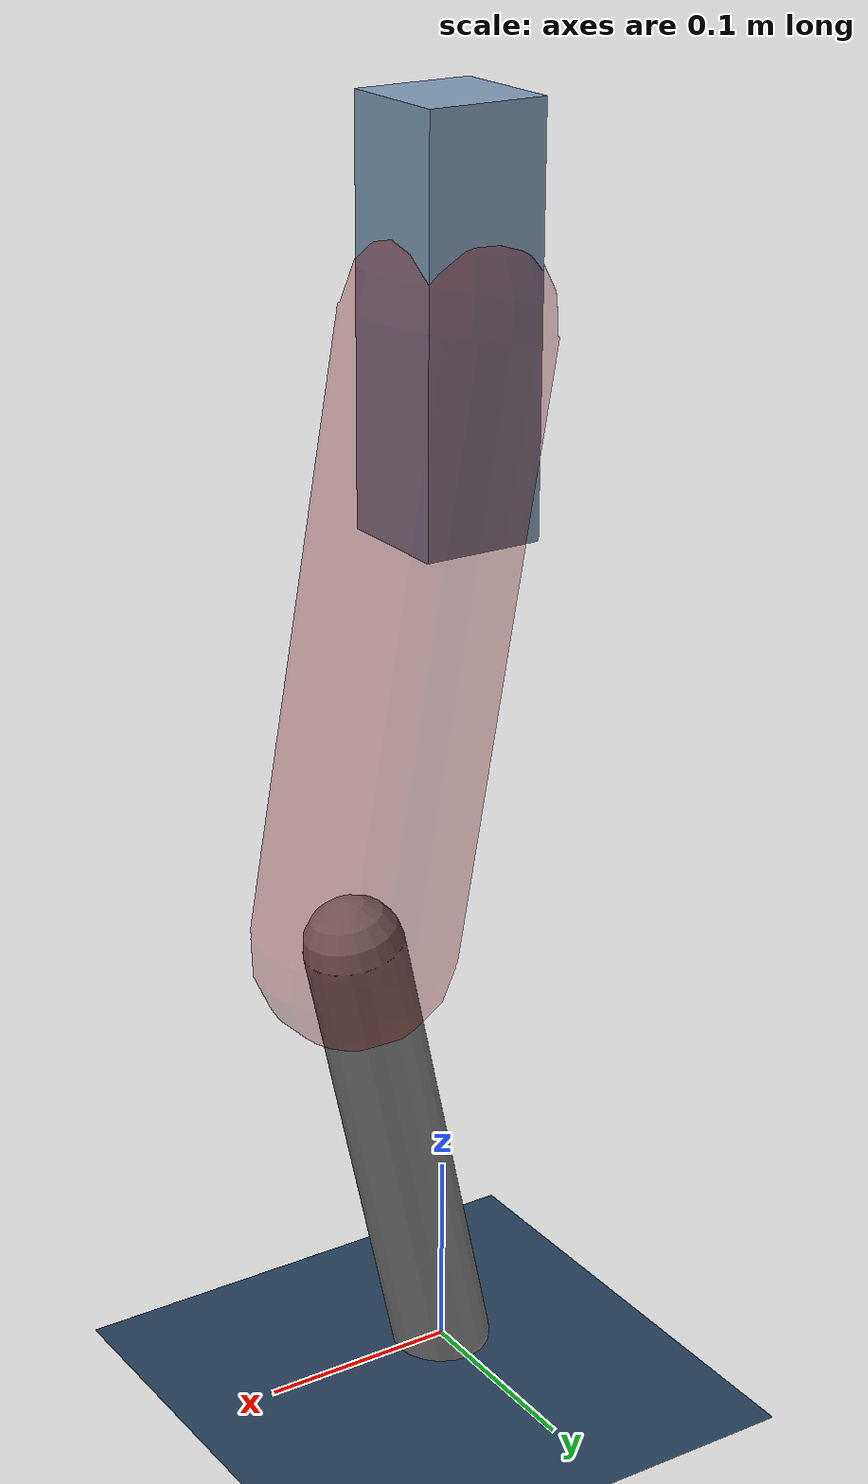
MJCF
<mujoco model="Hopper2D">
	<compiler inertiafromgeom="true" angle="radian" />
	<option timestep="0.001" integrator="implicit" cone="elliptic" solver="Newton" tolerance="1e-10" />

	<default>
		<geom contype="1" conaffinity="1" condim="3" friction="2 0.005 0.0001" solref="0.005 1" />
		<joint limited="true" damping="0.1" />
	</default>

	<asset>
		<texture name="skybox" type="skybox" builtin="gradient" rgb1=".4 .6 .8" rgb2="0 0 0" width="800" height="800" />
		<texture name="grid" type="2d" builtin="checker" rgb1=".1 .2 .3" rgb2=".2 .3 .4" width="300" height="300" mark="edge" markrgb=".2 .3 .4" />
		<material name="ground" texture="grid" texrepeat="1 1" texuniform="true" reflectance="0.1" />
		<material name="leg" rgba="0.5 0.6 0.7 1" />
	</asset>

	<worldbody>

		<geom name="floor" type="plane" size="5 5 0.25" material="ground" />

		<light directional="false" diffuse="0.8 0.8 0.8" specular="0.3 0.3 0.3" pos="0 0 2" dir="0 0 -1" />
		<light mode="targetbodycom" target="base" directional="false" diffuse="0.8 0.8 0.8" specular="0.3 0.3 0.3" pos="0 0 2" dir="0 0 -1" />

		<camera name="fixed" pos="0 -2 1" xyaxes="1 0 0 0 0 1" />
		<camera name="tracking" mode="trackcom" pos="0 -3 1" />

		<body name="root" pos="0 0 0.5338774517965403">
			<joint name="slide_x" type="slide" axis="1 0 0" range="-100 100" />
			<joint name="slide_z" type="slide" axis="0 0 1" range="0 10" />

			<body name="base" pos="0 0 0">
				<geom name="torso" type="box" size="0.03 0.03 0.1" mass="2.1420000000000003" material="leg" />

				<body name="link1" pos="0 0 0" euler="0 1.3984989449945082 0">
					<joint type="hinge" axis="0 -1 0" pos="0 0 0" name="hinge1" limited="true" range="-3.14 3.14" stiffness="0" damping="0.1" />
					<geom name="thigh" type="capsule" fromto="0 0 0 0.3009671086802398 0 0" size="0.05" rgba="0.5 0 0 0.3" mass="0.9913111934366474" />

					<body name="link2" pos="0.3009671086802398 0 0" euler="0 0.38635089845234194 0">
						<joint type="hinge" axis="0 -1 0" pos="0 0 0" name="hinge2" limited="true" range="-3.14 3.14" stiffness="0" damping="0.1" />
						<geom name="shank" type="capsule" fromto="0 0 0 0.2429103431163006 0 0" size="0.025" mass="0.4366282744930405" />

					</body>
				</body>
			</body>
		</body>
	</worldbody>

	<actuator>
		<motor name="torque1" joint="hinge1" ctrlrange="-36.33172722188074 36.33172722188074" ctrllimited="true" gear="1" />
		<motor name="torque2" joint="hinge2" ctrlrange="-101.8570792859192 101.8570792859192" ctrllimited="true" gear="1" />
	</actuator>
</mujoco>
